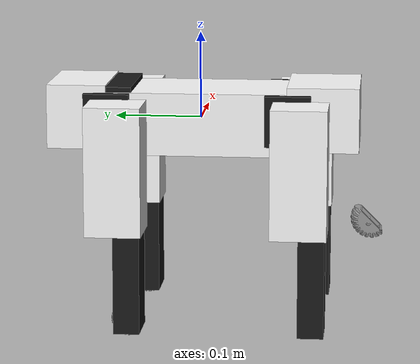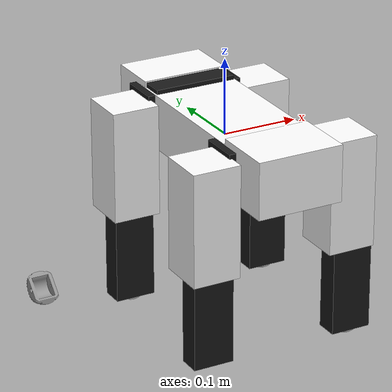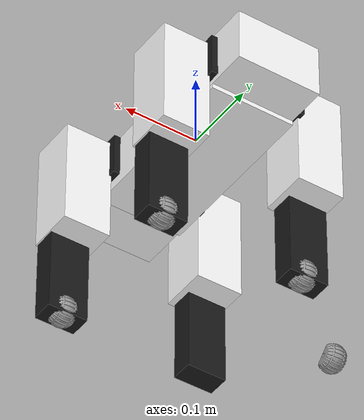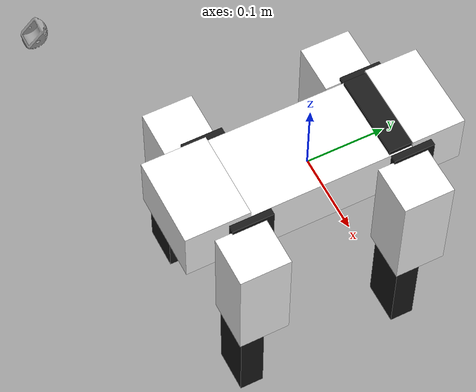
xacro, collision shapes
<?xml version="1.0"?>
<robot name="spot" xmlns:xacro="http://www.ros.org/wiki/xacro">

  <!-- Include Macros -->
  <xacro:include filename="$(find mini_ros)/urdf/ceasar_macro.xacro" />
  <xacro:include filename="$(find mini_ros)/urdf/transmissions.xacro" />

  <!-- Robot description -->
  <!-- STATIC Links -->
  <link name="base_link"/>

  <!-- FIXME: check if center of mass for inertia should be from component or assembly frame -->

  <!-- MAIN BODY -->
  <xacro:mesh_link name="base_inertia"
              origin_rpy="0 0 0" origin_xyz="0 0 0"
              i_rpy="0 0 0" i_xyz="0 -0.000285 0.004814"
              mass="0.6"
              c_xyz="0 0 0"
              length="0.114062"
              width="0.23750"
              height="0.072477"
              matname="white"
              meshfile="package://mini_ros/stl/ceasar/mainbody.stl"
              meshscale="0.001 0.001 0.001" />
  <xacro:frame_joint name="base_base" type="fixed"
              origin_rpy="0 0 0" origin_xyz="0 0 0"
              parent="base_link" child="base_inertia"/>

  <!-- CHASSIS LEFT -->
  <xacro:mesh_link name="chassis_left"
              origin_rpy="0 0 0" origin_xyz="0 0 0"
              i_rpy="0 0 0" i_xyz="-0.000337 0 0.002867"
              mass="0.013"
              c_xyz="0 0 0"
              length="0.00650"
              width="0.150"
              height="0.025"
              matname="black"
              meshfile="package://mini_ros/stl/ceasar/Chassis_Left_Side.stl"
              meshscale="0.001 0.001 0.001" />
  <!-- MAIN BODY TO CHASSIS LEFT -->
<xacro:frame_joint name="base_left" type="fixed"
              origin_rpy="0 0 0" origin_xyz="0.052439 -0.00050 0.007188"
              parent="base_inertia" child="chassis_left"/>
  <!-- CHASSIS Right -->
  <xacro:mesh_link name="chassis_right"
              origin_rpy="0 0 0" origin_xyz="0 0 0"
              i_rpy="0 0 0" i_xyz="0 0 0.002867"
              mass="0.013"
              c_xyz="0 0 0"
              length="0.00650"
              width="0.150"
              height="0.025"
              matname="black"
              meshfile="package://mini_ros/stl/ceasar/Chassis_Right_Side.stl"
              meshscale="0.001 0.001 0.001" />
  <!-- MAIN BODY TO CHASSIS RIGHT -->
<xacro:frame_joint name="base_right" type="fixed"
              origin_rpy="0 0 0" origin_xyz="-0.052188 -0.00050 0.007188"
              parent="base_inertia" child="chassis_right"/>

  <!-- FRONT BRACKET -->
  <xacro:mesh_link name="front_bracket"
              origin_rpy="${pi/2} 0 0" origin_xyz="0 0 0"
              i_rpy="0 0 0" i_xyz="0 0.038652 0.025567"
              mass="0.1"
              c_xyz="0 -0.0289 0.035"
              length="0.110"
              width="0.0575"
              height="0.070"
              matname="black"
              meshfile="package://mini_ros/stl/ceasar/bracket.stl"
              meshscale="0.001 0.001 0.001" />
  <!-- joint X at front of mainbody -->
  <xacro:frame_joint name="base_front_bracket" type="fixed"
              origin_rpy="0 0 0" origin_xyz="-0.052689 -0.075 -0.034938"
              parent="chassis_left" child="front_bracket"/>

  <!-- FRONT -->
  <xacro:mesh_link name="front"
              origin_rpy="0 0 0" origin_xyz="0 0 0"
              i_rpy="0 0 0" i_xyz="-0.057138 0.034954 0.036238"
              mass="0.1"
              c_xyz="-0.057 0.041 0.03760"
              length="0.114017"
              width="0.082641"
              height="0.074505"
              matname="white"
              meshfile="package://mini_ros/stl/ceasar/front.stl"
              meshscale="0.001 0.001 0.001" />
  <xacro:frame_joint name="base_front" type="fixed"
                  origin_rpy="0 0 0" origin_xyz="0.057 -0.110043 -0.002749"
                  parent="front_bracket" child="front"/>

  <!-- BACK BRACKET -->
  <xacro:mesh_link name="back_bracket"
              origin_rpy="-${pi/2} ${pi} 0" origin_xyz="0 0 0"
              i_rpy="0 0 0" i_xyz="0 0.038652 0.025567"
              mass="0.1"
              c_xyz="0 0.030 0.035"
              length="0.110"
              height="0.0575"
              width="0.070"
              matname="black"
              meshfile="package://mini_ros/stl/ceasar/bracket.stl"
              meshscale="0.001 0.001 0.001" />
  <!-- MAIN BODY TO BACK BRACKET -->
  <xacro:frame_joint name="base_back_bracket" type="fixed"
                  origin_rpy="0 0 0" origin_xyz="0.052438 0.075 -0.034938"
                  parent="chassis_right" child="back_bracket"/>

  <!-- BACK -->
  <xacro:mesh_link name="back"
              origin_rpy="0 0 0" origin_xyz="0 0 0"
              i_rpy="0 0 0" i_xyz="-0.057076 -0.021565 -0.036987"
              mass="0.1"
              c_xyz="-0.057 -0.03440 -0.037"
              length="0.114"
              width="0.06875"
              height="0.074"
              matname="white"
              meshfile="package://mini_ros/stl/ceasar/back.stl"
              meshscale="0.001 0.001 0.001" />
  <xacro:frame_joint name="base_back" type="fixed"
                  origin_rpy="0 0 0" origin_xyz="0.057 0.09910 0.072062"
                  parent="back_bracket" child="back"/>

  <!-- DYNAMIC LINKS (Joints Included) -->
  <!-- FRONT LEFT LEG -->
  <!-- HIP -->
  <xacro:mesh_link name="front_left_hip"
              origin_rpy="0 0 0" origin_xyz="0 0 0"
              i_rpy="0 0 0" i_xyz="0.009118 0.028986 -0.010824"
              mass="0.1"
              c_xyz="0.00780 0.02650 -0.010"
              length="0.03740"
              width="0.05275"
              height="0.058661"
              matname="black"
              meshfile="package://mini_ros/stl/ceasar/LEFT_FRONT_HIP.stl"
              meshscale="0.001 0.001 0.001" />
  <xacro:rev_joint name="motor_front_left_hip" type="revolute"
              axis_xyz="0 1 0"
              origin_rpy="0 0 0" origin_xyz="0.03925 -0.131 0.01625"
              parent="base_inertia" child="front_left_hip"
              effort="4.0" velocity="4.0"
              damping="0.0"
              friction="0.0"
              lower="-1.04"
              upper="1.04"/>
  <!-- UPPER LEG -->
  <xacro:mesh_link name="front_left_upper_leg"
              origin_rpy="0 0 0" origin_xyz="0 0 0"
              i_rpy="0 0 0" i_xyz="0.035045 -0.001823 -0.045647"
              mass="0.135"
              c_xyz="0.03150 -0.015 -0.050"
              length="0.063251"
              width="0.064156"
              height="0.148092"
              matname="white"
              meshfile="package://mini_ros/stl/ceasar/LEFT_UPPER_LEG.stl"
              meshscale="0.001 0.001 0.001" />
  <xacro:rev_joint name="motor_front_left_upper_leg" type="revolute"
              axis_xyz="1 0 0"
              origin_rpy="0 0 0" origin_xyz="0.024075 0.026 -0.010561"
              parent="front_left_hip" child="front_left_upper_leg"
              effort="4.0" velocity="4.0"
              damping="0.0"
              friction="0.0"
              lower="${-pi/2}"
              upper="2.59"/>
  <!-- LOWER LEG -->
  <xacro:mesh_link name="front_left_lower_leg"
              origin_rpy="0 0 0" origin_xyz="0 0 0"
              i_rpy="0 0 0" i_xyz="0.027767 -0.000689 -0.029091"
              mass="0.092"
              c_xyz="0.0267 0 -0.055"
              length="0.05325"
              width="0.030"
              height="0.150239"
              matname="black"
              meshfile="package://mini_ros/stl/ceasar/LEFT_LOWER_LEG.stl"
              meshscale="0.001 0.001 0.001" />
  <xacro:rev_joint name="motor_front_left_lower_leg" type="revolute"
              axis_xyz="1 0 0"
              origin_rpy="0 0 0" origin_xyz="0.008 -0.029925 -0.106389"
              parent="front_left_upper_leg" child="front_left_lower_leg"
              effort="4.0" velocity="4.0"
              damping="0.0"
              friction="0.0"
              lower="-${pi}"
              upper="${pi/2}"/>
  <!-- FOOT -->
  <xacro:mesh_link_sphere name="front_left_foot"
              origin_rpy="0 0 0" origin_xyz="0 0 0"
              i_rpy="0 0 0" i_xyz="-0.011499 0.004147 -0.00415"
              mass="0.006"
              c_xyz="0 0 0"
              length="0.028"
              width="0.031435"
              height="0.031435"
              radius="0.02"
              matname="grey"
              meshfile="package://mini_ros/stl/ceasar/foot.stl"
              meshscale="0.001 0.001 0.001" />
  <xacro:frame_joint name="front_left_leg_foot" type="fixed"
              origin_rpy="0 0 0" origin_xyz="0.03775 0.002443 -0.120257"
              parent="front_left_lower_leg" child="front_left_foot"/>

  <!-- BACK LEFT LEG -->
  <!-- HIP -->
  <xacro:mesh_link name="back_left_hip"
              origin_rpy="0 0 0" origin_xyz="0 0 0"
              i_rpy="0 0 0" i_xyz="0.009118 0.028986 -0.010824"
              mass="0.1"
              c_xyz="0.00780 -0.02650 -0.010"
              length="0.03740"
              width="0.05275"
              height="0.058661"
              matname="black"
              meshfile="package://mini_ros/stl/ceasar/LEFT_BACK_HIP.stl"
              meshscale="0.001 0.001 0.001" />
  <xacro:rev_joint name="motor_back_left_hip" type="revolute"
              axis_xyz="0 1 0"
              origin_rpy="0 0 0" origin_xyz="0.03925 0.130 0.01625"
              parent="base_inertia" child="back_left_hip"
              effort="4.0" velocity="4.0"
              damping="0.0"
              friction="0.0"
              lower="-1.04"
              upper="1.04"/>
   <!-- UPPER LEG -->
  <xacro:mesh_link name="back_left_upper_leg"
              origin_rpy="0 0 0" origin_xyz="0 0 0"
              i_rpy="0 0 0" i_xyz="0.035045 -0.001823 -0.045647"
              mass="0.135"
              c_xyz="0.03150 -0.015 -0.050"
              length="0.063251"
              width="0.064156"
              height="0.148092"
              matname="white"
              meshfile="package://mini_ros/stl/ceasar/LEFT_UPPER_LEG.stl"
              meshscale="0.001 0.001 0.001" />
  <xacro:rev_joint name="motor_back_left_upper_leg" type="revolute"
              axis_xyz="1 0 0"
              origin_rpy="0 0 0" origin_xyz="0.024075 -0.026 -0.010561"
              parent="back_left_hip" child="back_left_upper_leg"
              effort="4.0" velocity="4.0"
              damping="0.0"
              friction="0.0"
              lower="-2.9"
              upper="2.59"/>
  <!-- LOWER LEG -->
  <xacro:mesh_link name="back_left_lower_leg"
              origin_rpy="0 0 0" origin_xyz="0 0 0"
              i_rpy="0 0 0" i_xyz="-0.011499 0.004147 -0.00415"
              mass="0.006"
              c_xyz="0.0267 0 -0.055"
              length="0.05325"
              width="0.030"
              height="0.150239"
              matname="black"
              meshfile="package://mini_ros/stl/ceasar/LEFT_LOWER_LEG.stl"
              meshscale="0.001 0.001 0.001" />
  <xacro:rev_joint name="motor_back_left_lower_leg" type="revolute"
              axis_xyz="1 0 0"
               origin_rpy="0 0 0" origin_xyz="0.008 -0.029925 -0.106389"
              parent="back_left_upper_leg" child="back_left_lower_leg"
              effort="4.0" velocity="4.0"
              damping="0.0"
              friction="0.0"
              lower="-${pi}"
              upper="${pi/2}"/>
  <!-- FOOT -->
  <xacro:mesh_link_sphere name="back_left_foot"
              origin_rpy="0 0 0" origin_xyz="0 0 0"
              i_rpy="0 0 0" i_xyz="-0.011499 0.004147 -0.00415"
              mass="0.006"
              c_xyz="0 0 0"
              length="0.028"
              width="0.031435"
              height="0.031435"
              radius="0.02"
              matname="grey"
              meshfile="package://mini_ros/stl/ceasar/foot.stl"
              meshscale="0.001 0.001 0.001" /> <!-- m to mm -->
  <xacro:frame_joint name="back_left_leg_foot" type="fixed"
              origin_rpy="0 0 0" origin_xyz="0.03775 0.002443 -0.120257"
              parent="back_left_lower_leg" child="back_left_foot"/>

  <!-- FRONT RIGHT LEG -->
  <!-- HIP -->
  <xacro:mesh_link name="front_right_hip"
              origin_rpy="0 0 0" origin_xyz="0 0 0"
              i_rpy="0 0 0" i_xyz="-0.011499 0.004147 -0.00415"
              mass="0.006"
              c_xyz="-0.00880 0.02640 -0.010"
              length="0.03740"
              width="0.05275"
              height="0.058661"
              matname="black"
              meshfile="package://mini_ros/stl/ceasar/RIGHT_FRONT_HIP.stl"
              meshscale="0.001 0.001 0.001" />
  <xacro:rev_joint name="motor_front_right_hip" type="revolute"
              axis_xyz="0 1 0"
              origin_rpy="0 0 0" origin_xyz="-0.03875 -0.131 0.01625"
              parent="base_inertia" child="front_right_hip"
              effort="4.0" velocity="4.0"
              damping="0.0"
              friction="0.0"
              lower="-1.04"
              upper="1.04"/>
  <!-- UPPER LEG -->
  <xacro:mesh_link name="front_right_upper_leg"
              origin_rpy="0 0 0" origin_xyz="0 0 0"
              i_rpy="0 0 0" i_xyz="-0.035045 -0.001823 -0.045647"
              mass="0.135"
              c_xyz="-0.03150 -0.015 -0.050"
              length="0.063251"
              width="0.064156"
              height="0.148092"
              matname="white"
              meshfile="package://mini_ros/stl/ceasar/RIGHT_UPPER_LEG.stl"
              meshscale="0.001 0.001 0.001" />
  <xacro:rev_joint name="motor_front_right_upper_leg" type="revolute"
              axis_xyz="1 0 0"
              origin_rpy="0 0 0" origin_xyz="-0.024075 0.026 -0.010561"
              parent="front_right_hip" child="front_right_upper_leg"
              effort="4.0" velocity="4.0"
              damping="0.0"
              friction="0.0"
              lower="${-pi/2}"
              upper="2.59"/>
  <!-- LOWER LEG -->
  <xacro:mesh_link name="front_right_lower_leg"
              origin_rpy="0 0 0" origin_xyz="0 0 0"
              i_rpy="0 0 0" i_xyz="-0.027767 -0.000689 -0.029091"
              mass="0.092"
              c_xyz="-0.0267 0 -0.055"
              length="0.05325"
              width="0.030"
              height="0.150239"
              matname="black"
              meshfile="package://mini_ros/stl/ceasar/RIGHT_LOWER_LEG.stl"
              meshscale="0.001 0.001 0.001" />
  <xacro:rev_joint name="motor_front_right_lower_leg" type="revolute"
              axis_xyz="1 0 0"
              origin_rpy="0 0 0" origin_xyz="-0.008 -0.029925 -0.106389"
              parent="front_right_upper_leg" child="front_right_lower_leg"
              effort="4.0" velocity="4.0"
              damping="0.0"
              friction="0.0"
              lower="-${pi}"
              upper="${pi/2}"/>
  <!-- FOOT -->
  <xacro:mesh_link_sphere name="front_right_foot"
              origin_rpy="0 0 0" origin_xyz="0 0 0"
              i_rpy="0 0 0" i_xyz="-0.011499 0.004147 -0.00415"
              mass="0.006"
              c_xyz="${-0.247} ${-0.068} ${0.18}"
              length="0.028"
              width="0.031435"
              height="0.031435"
              radius="0.02"
              matname="grey"
              meshfile="package://mini_ros/stl/ceasar/foot.stl"
              meshscale="0.001 0.001 0.001" /> <!-- m to mm -->
  <xacro:frame_joint name="front_right_leg_foot" type="fixed"
              origin_rpy="0 0 0" origin_xyz="-0.01475 0.002443 -0.120257"
              parent="front_right_lower_leg" child="front_right_foot"/>

  <!-- BACK RIGHT LEG -->
  <!-- HIP -->
  <xacro:mesh_link name="back_right_hip"
              origin_rpy="0 0 0" origin_xyz="0 0 0"
              i_rpy="0 0 0" i_xyz="-0.009118 -0.028986 -0.010824"
              mass="0.1"
              c_xyz="-0.00880 -0.02640 -0.010"
              length="0.03740"
              width="0.05275"
              height="0.058661"
              matname="black"
              meshfile="package://mini_ros/stl/ceasar/RIGHT_BACK_HIP.stl"
              meshscale="0.001 0.001 0.001" />
  <xacro:rev_joint name="motor_back_right_hip" type="revolute"
              axis_xyz="0 1 0"
              origin_rpy="0 0 0" origin_xyz="-0.03875 0.130 0.01625"
              parent="base_inertia" child="back_right_hip"
              effort="4.0" velocity="4.0"
              damping="0.0"
              friction="0.0"
              lower="-1.04"
              upper="1.04"/>
  <!-- UPPER LEG -->
  <xacro:mesh_link name="back_right_upper_leg"
              origin_rpy="0 0 0" origin_xyz="0 0 0"
              i_rpy="0 0 0" i_xyz="-0.035045 -0.001823 -0.045647"
              mass="0.135"
              c_xyz="-0.03150 -0.015 -0.050"
              length="0.063251"
              width="0.064156"
              height="0.148092"
              matname="white"
              meshfile="package://mini_ros/stl/ceasar/RIGHT_UPPER_LEG.stl"
              meshscale="0.001 0.001 0.001" />
  <xacro:rev_joint name="motor_back_right_upper_leg" type="revolute"
              axis_xyz="1 0 0"
              origin_rpy="0 0 0" origin_xyz="-0.024075 -0.026 -0.010561"
              parent="back_right_hip" child="back_right_upper_leg"
              effort="4.0" velocity="4.0"
              damping="0.0"
              friction="0.0"
              lower="${-pi/2}"
              upper="2.59"/>
  <!-- LOWER LEG -->
  <xacro:mesh_link name="back_right_lower_leg"
              origin_rpy="0 0 0" origin_xyz="0 0 0"
              i_rpy="0 0 0" i_xyz="-0.027767 -0.000689 -0.029091"
              mass="0.092"
              c_xyz="-0.0267 0 -0.055"
              length="0.05325"
              width="0.030"
              height="0.150239"
              matname="black"
              meshfile="package://mini_ros/stl/ceasar/RIGHT_LOWER_LEG.stl"
              meshscale="0.001 0.001 0.001" />
  <xacro:rev_joint name="motor_back_right_lower_leg" type="revolute"
              axis_xyz="1 0 0"
              origin_rpy="0 0 0" origin_xyz="-0.008 -0.029925 -0.106389"
              parent="back_right_upper_leg" child="back_right_lower_leg"
              effort="4.0" velocity="4.0"
              damping="0.0"
              friction="0.0"
              lower="-${pi}"
              upper="${pi/2}"/>
  <!-- FOOT -->
  <xacro:mesh_link_sphere name="back_right_foot"
              origin_rpy="0 0 0" origin_xyz="0 0 0"
              i_rpy="0 0 0" i_xyz="-0.011499 0.004147 -0.00415"
              mass="0.006"
              c_xyz="0 0 0"
              length="0.028"
              width="0.031435"
              height="0.031435"
              radius="0.02"
              matname="grey"
              meshfile="package://mini_ros/stl/ceasar/foot.stl"
              meshscale="0.001 0.001 0.001" /> <!-- m to mm -->
  <xacro:frame_joint name="back_right_leg_foot" type="fixed"
              origin_rpy="0 0 0" origin_xyz="-0.01475 0.002443 -0.120257"
              parent="back_right_lower_leg" child="back_right_foot"/>

  <!-- Robot tranmission for Gazebo -->
  <xacro:quadruped_transmission leg="front_left"/>
  <xacro:quadruped_transmission leg="front_right"/>
  <xacro:quadruped_transmission leg="back_left"/>
  <xacro:quadruped_transmission leg="back_right"/>

  <gazebo>
    <plugin name="gazebo_ros_control" filename="libgazebo_ros_control.so">
        <robotNamespace>/spot</robotNamespace>
    </plugin>
  </gazebo>
</robot>

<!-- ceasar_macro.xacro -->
<robot xmlns:xacro="http://www.ros.org/wiki/xacro">

  <material name="white">
    <color rgba="1.0 1.0 1.0 1"/>
  </material>
  <material name="black">
    <color rgba="0.1 0.1 0.1 1"/>
  </material>
  <material name="grey">
    <color rgba="0.6 0.6 0.6 1"/>
  </material>

  <xacro:macro name="rev_joint" params="name type axis_xyz origin_rpy origin_xyz parent child effort velocity damping friction upper lower">
    <joint name="${name}" type="${type}">
      <axis xyz="${axis_xyz}" />
      <origin rpy="${origin_rpy}" xyz="${origin_xyz}" />
      <parent link="${parent}" />
      <child link="${child}" />
      <limit effort="${effort}" velocity="${velocity}" lower="${lower}" upper="${upper}"/>
      <joint_properties damping="${damping}" friction="${friction}" />
    </joint>
  </xacro:macro>

  <xacro:macro name="frame_joint" params="name type origin_rpy origin_xyz parent child">
    <joint name="${name}" type="${type}">
      <origin rpy="${origin_rpy}" xyz="${origin_xyz}" />
      <parent link="${parent}" />
      <child link="${child}" />
    </joint>
  </xacro:macro>

  <xacro:macro name="mesh_link" params="name origin_xyz origin_rpy meshfile meshscale c_xyz matname mass i_xyz i_rpy length width height">
    <link name="${name}">
      <visual>
        <origin rpy="${origin_rpy}" xyz="${origin_xyz}" />
        <geometry>
          <mesh filename="${meshfile}" scale="${meshscale}"/>
        </geometry>
        <material name="${matname}"/>
      </visual>

      <collision>
        <origin rpy="${origin_rpy}" xyz="${c_xyz}" />
        <geometry>
          <box size="${length} ${width} ${height}" />
        </geometry>
      </collision>

      <inertial>
        <mass value="${mass}" />
        <origin rpy="${i_rpy}" xyz="${i_xyz}" /> <!-- Inertial Axes -->
        <inertia ixx="${mass * (width * width + height * height)/12.0}" ixy="${0}" ixz="${0}" iyx="${0}" iyy="${mass * (length * length + height * height)/12.0}" iyz="${0}" izx="${0}" izy="${0}" izz="${mass * (length * length + width * width)/12.0}" />
      </inertial>
    </link>
    <gazebo reference="${name}">
        <xacro:if value="${matname == 'black'}">
          <material>Gazebo/Black</material>
        </xacro:if>
        <xacro:if value="${matname == 'white'}">
          <material>Gazebo/white</material>
        </xacro:if>
    </gazebo>
  </xacro:macro>

  <xacro:macro name="mesh_link_sphere" params="name origin_xyz origin_rpy meshfile meshscale c_xyz matname mass i_xyz i_rpy length width height radius">
    <link name="${name}">
      <visual>
        <origin rpy="${origin_rpy}" xyz="${origin_xyz}" />
        <geometry>
          <mesh filename="${meshfile}" scale="${meshscale}"/>
        </geometry>
        <material name="${matname}"/>
      </visual>

      <collision>
        <origin rpy="${origin_rpy}" xyz="${c_xyz}" />
        <geometry>
          <mesh filename="${meshfile}" scale="${meshscale}"/>
        </geometry>
        <contact_coefficients mu="10.1"/>
      </collision>

      <inertial>
        <mass value="${mass}" />
        <origin rpy="${i_rpy}" xyz="${i_xyz}" /> <!-- Inertial Axes -->
        <inertia ixx="${mass * (width * width + height * height)/12.0}" ixy="${0}" ixz="${0}" iyx="${0}" iyy="${mass * (length * length + height * height)/12.0}" iyz="${0}" izx="${0}" izy="${0}" izz="${mass * (length * length + width * width)/12.0}" />
      </inertial>
    </link>

    <gazebo reference="${name}">
      <kp>1000000.0</kp>
      <kd>1.0</kd>
      <mu1>0.8</mu1>
      <mu2>0.8</mu2>
      <maxVel>0.0</maxVel>
      <minDepth>0.001</minDepth>
      <material>Gazebo/white</material>
    </gazebo>
  </xacro:macro>

  <!-- Left Leg: prefix is front or rear -->

</robot>
